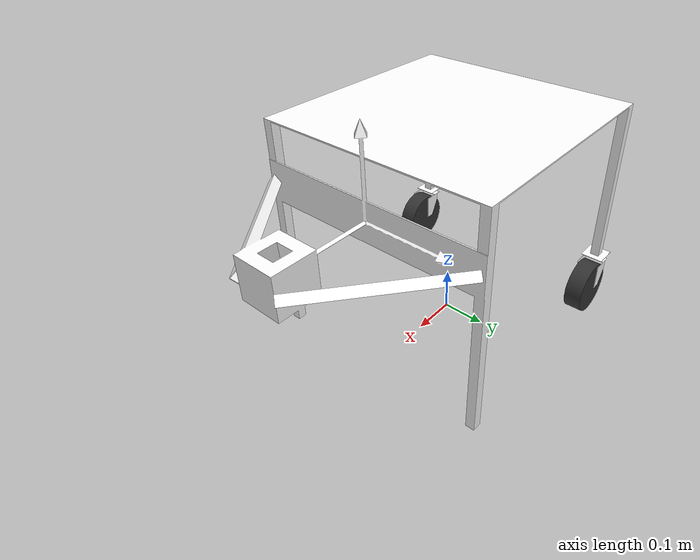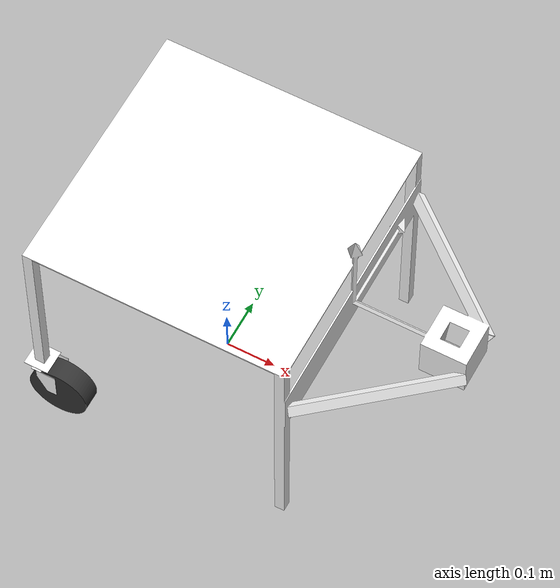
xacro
<?xml version="1.0" encoding="utf-8"?>
<robot xmlns:xacro="http://www.ros.org/wiki/xacro" name="movingshelf_trailertype">
	<xacro:include filename="$(find transbot_description)/urdf/movingshelf_trailertype/movingshelf_trailertype.urdf.xacro"></xacro:include>
	<xacro:movingshelf_trailertype prefix="" name=""></xacro:movingshelf_trailertype>
</robot>

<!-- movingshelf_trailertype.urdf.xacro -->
<robot xmlns:xacro="http://www.ros.org/wiki/xacro" name="movingshelf_trailertype">
	<xacro:macro name="movingshelf_trailertype" params="prefix='' name='movingshelf_trailertype' suffix=''">
		<link name="${prefix}${name}${suffix}_">
			<inertial density="7850">
				<origin xyz="0.17841472809303976 0.0005525697572221869 0.42558090124835" rpy="0 0 0"></origin>
				<mass value="1.689090703924497"></mass>
				<inertia ixx="0.0462561035291274" ixy="-7.61140432793262e-05" ixz="0.01745311270090666" iyy="0.11417955857507817" iyz="5.1842530445246724e-05" izz="0.1338652384586364"></inertia>
			</inertial>
			<visual>
				<geometry>
					<mesh filename="package://transbot_description/meshes/movingshelf_trailertype/_.stl" scale="1e-3 1e-3 1e-3"></mesh>
				</geometry>
				<material name="">
					<color rgba="1 1 1 1"></color>
				</material>
			</visual>
			<collision>
				<geometry>
					<mesh filename="package://transbot_description/meshes/movingshelf_trailertype/_.stl" scale="1e-3 1e-3 1e-3"></mesh>
				</geometry>
			</collision>
		</link>
		<xacro:include filename="$(find transbot_description)/urdf/movingshelf_trailertype/castor/castor.urdf.xacro"></xacro:include>
		<joint name="j/${prefix}${name}${suffix}castor0/_" type="fixed">
			<origin xyz="-0.25 0.25 0.13" rpy="0.0 0.0 0.0"></origin>
			<parent link="${prefix}${name}${suffix}_"></parent>
			<child link="${prefix}${name}${suffix}castor0/_"></child>
		</joint>
		<joint name="j/${prefix}${name}${suffix}castor1/_" type="fixed">
			<origin xyz="-0.25 -0.25 0.13" rpy="0.0 0.0 0.0"></origin>
			<parent link="${prefix}${name}${suffix}_"></parent>
			<child link="${prefix}${name}${suffix}castor1/_"></child>
		</joint>
		<xacro:castor prefix="${prefix}${name}${suffix}" suffix="0/"></xacro:castor>
		<xacro:castor prefix="${prefix}${name}${suffix}" suffix="1/"></xacro:castor>
	</xacro:macro>
</robot>

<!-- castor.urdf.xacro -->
<robot xmlns:xacro="http://www.ros.org/wiki/xacro" name="castor">
	<xacro:macro name="castor" params="prefix='' name='castor' suffix=''">
		<link name="${prefix}${name}${suffix}_">
			<inertial density="7850">
				<origin xyz="0.0 0.0 0.0" rpy="0 0 0"></origin>
				<mass value="0.010000000960038355"></mass>
				<inertia ixx="8.334167593144114e-06" ixy="-0.0" ixz="-0.0" iyy="8.334167593144114e-06" iyz="-0.0" izz="1.666666851936801e-05"></inertia>
			</inertial>
			<visual>
				<geometry>
					<mesh filename="package://transbot_description/meshes/movingshelf_trailertype/castor/_.stl" scale="1e-3 1e-3 1e-3"></mesh>
				</geometry>
				<material name="">
					<color rgba="1 1 1 1"></color>
				</material>
			</visual>
			<collision>
				<geometry>
					<mesh filename="package://transbot_description/meshes/movingshelf_trailertype/castor/_.stl" scale="1e-3 1e-3 1e-3"></mesh>
				</geometry>
			</collision>
		</link>
		<xacro:include filename="$(find transbot_description)/urdf/movingshelf_trailertype/castor/arm.urdf.xacro"></xacro:include>
		<xacro:include filename="$(find transbot_description)/urdf/movingshelf_trailertype/castor/wheel.urdf.xacro"></xacro:include>
		<joint name="j/${prefix}${name}${suffix}arm" type="continuous">
			<origin xyz="0.0 0.0 -0.01" rpy="0.0 0.0 0.0"></origin>
			<parent link="${prefix}${name}${suffix}_"></parent>
			<child link="${prefix}${name}${suffix}arm"></child>
			<axis xyz="0 0 1"></axis>
		</joint>
		<joint name="j/${prefix}${name}${suffix}wheel" type="continuous">
			<origin xyz="0.04 0.0 -0.06" rpy="1.5707963267948966 0.0 0.0"></origin>
			<parent link="${prefix}${name}${suffix}arm"></parent>
			<child link="${prefix}${name}${suffix}wheel"></child>
			<axis xyz="0 0 1"></axis>
		</joint>
		<xacro:arm prefix="${prefix}${name}${suffix}" suffix=""></xacro:arm>
		<xacro:wheel prefix="${prefix}${name}${suffix}" suffix=""></xacro:wheel>
	</xacro:macro>
</robot>

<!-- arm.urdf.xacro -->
<robot xmlns:xacro="http://www.ros.org/wiki/xacro" name="arm">
	<xacro:macro name="arm" params="prefix='' name='arm' suffix=''">
		<link name="${prefix}${name}${suffix}">
			<inertial density="7850">
				<origin xyz="0.018158393064544705 1.824520678445946e-09 -0.021373346834980968" rpy="0 0 0"></origin>
				<mass value="0.004989709850633517"></mass>
				<inertia ixx="4.269800316730799e-06" ixy="2.0925722983577967e-13" ixz="6.760939545807843e-07" iyy="2.5602740276827752e-06" iyz="4.900582413423202e-13" izz="3.4974540393428237e-06"></inertia>
			</inertial>
			<visual>
				<geometry>
					<mesh filename="package://transbot_description/meshes/movingshelf_trailertype/castor/arm.stl" scale="1e-3 1e-3 1e-3"></mesh>
				</geometry>
				<material name="">
					<color rgba="1 1 1 1"></color>
				</material>
			</visual>
			<collision>
				<geometry>
					<mesh filename="package://transbot_description/meshes/movingshelf_trailertype/castor/arm.stl" scale="1e-3 1e-3 1e-3"></mesh>
				</geometry>
			</collision>
		</link>
	</xacro:macro>
</robot>

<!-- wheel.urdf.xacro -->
<robot xmlns:xacro="http://www.ros.org/wiki/xacro" name="wheel">
	<xacro:macro name="wheel" params="prefix='' name='wheel' suffix=''">
		<link name="${prefix}${name}${suffix}">
			<inertial density="2500">
				<origin xyz="6.398975191828604e-10 -2.0980246530585588e-10 -2.7766045017821864e-10" rpy="0 0 0"></origin>
				<mass value="0.4515630037834247"></mass>
				<inertia ixx="0.0004658728812501066" ixy="4.500103932524029e-12" ixz="2.3869787006329817e-13" iyy="0.0004658728509336164" iyz="2.6305282117601664e-20" izz="0.0008113289671503781"></inertia>
			</inertial>
			<visual>
				<geometry>
					<mesh filename="package://transbot_description/meshes/movingshelf_trailertype/castor/wheel.stl" scale="1e-3 1e-3 1e-3"></mesh>
				</geometry>
				<material name="">
					<color rgba="0.2 0.2 0.2 1"></color>
				</material>
			</visual>
			<collision>
				<geometry>
					<mesh filename="package://transbot_description/meshes/movingshelf_trailertype/castor/wheel.stl" scale="1e-3 1e-3 1e-3"></mesh>
				</geometry>
			</collision>
		</link>
	</xacro:macro>
</robot>
